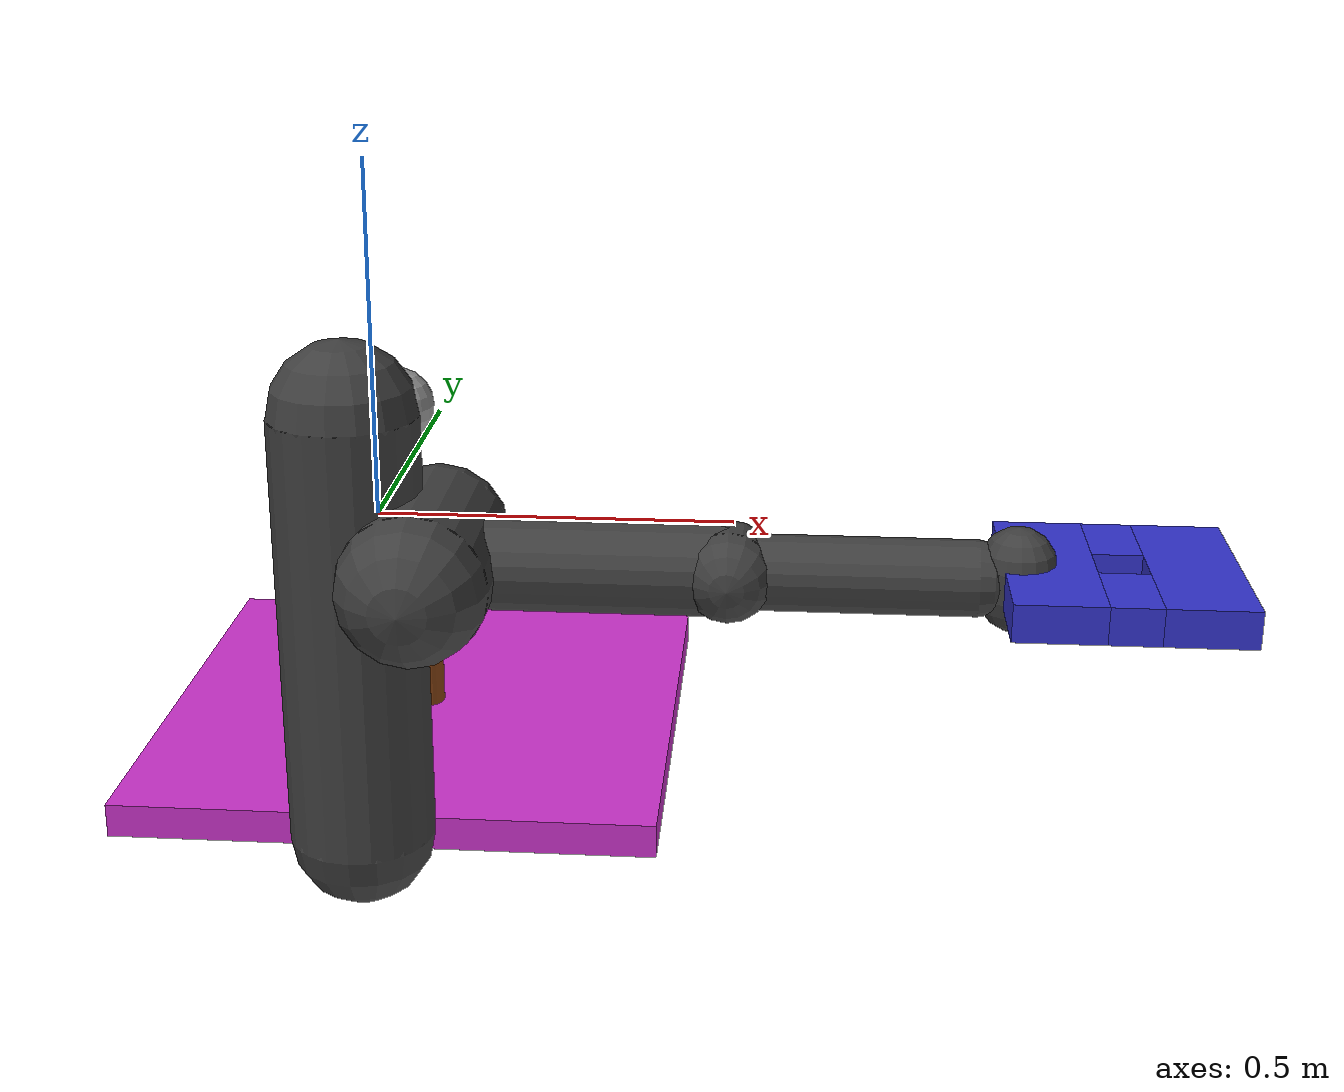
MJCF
<mujoco model="arm3d">

    <compiler inertiafromgeom="true" angle="radian" coordinate="local" />
    <option timestep="0.01" gravity="0 0 0" iterations="20" integrator="Euler" />
    <default>
        <joint armature="0.04" damping="1" limited="true" />
        <geom friction=".5 .1 .1" margin="0.002" condim="1" contype="0" conaffinity="0" />
    </default>
    <visual>
        <headlight ambient="1 1 1" />
    </visual>
    <asset>
        <material name="non-reflect" specular="0" shininess="0"/>
    </asset>

    <asset>
        <texture type="skybox" builtin="checker" rgb1="1 1 1" rgb2="1 1 1"
                 width="256" height="256"/>
    </asset>

    <worldbody>
        <body name="r_shoulder_pan_link" pos="0 -0.188 0">
            <geom name="e1" type="sphere" rgba="0.6 0.6 0.6 1" pos="-0.06 0.05 0.2" size="0.05" />
            <geom name="e2" type="sphere" rgba="0.6 0.6 0.6 1" pos=" 0.06 0.05 0.2" size="0.05" />
            <geom name="e1p" type="sphere" rgba="0.1 0.1 0.1 1" pos="-0.06 0.09 0.2" size="0.03" />
            <geom name="e2p" type="sphere" rgba="0.1 0.1 0.1 1" pos=" 0.06 0.09 0.2" size="0.03" />
            <geom name="sp" type="capsule" fromto="0 0 -0.4 0 0 0.2" size="0.1" contype="1" conaffinity="1" rgba="0.25 0.25 0.25 1"/>
            <joint name="r_shoulder_pan_joint" type="hinge" pos="0 0 0" axis="0 0 1" range="-2.2854 1.714602" damping="10.0" />

            <body name="r_shoulder_lift_link" pos="0.1 0 0">
                <geom name="sl" type="capsule" fromto="0 -0.1 0 0 0.1 0" size="0.1" contype="1" conaffinity="1" rgba="0.25 0.25 0.25 1"/>
                <joint name="r_shoulder_lift_joint" type="hinge" pos="0 0 0" axis="0 1 0" range="-0.5236 1.3963" damping="10.0" />

                <body name="r_upper_arm_roll_link" pos="0 0 0">
                    <geom name="uar" type="capsule" fromto="-0.1 0 0 0.1 0 0" size="0.02" rgba="0.25 0.25 0.25 1"/>
                    <joint name="r_upper_arm_roll_joint" type="hinge" pos="0 0 0" axis="1 0 0" range="-3.9 0.8" damping="0.1" />

                    <body name="r_upper_arm_link" pos="0 0 0">
                        <geom name="ua" type="capsule" fromto="0 0 0 0.4 0 0" size="0.06" contype="1" conaffinity="1" rgba="0.25 0.25 0.25 1"/>

                        <body name="r_elbow_flex_link" pos="0.4 0 0">
                            <geom name="ef" type="capsule" fromto="0 -0.02 0 0.0 0.02 0" size="0.06" rgba="0.25 0.25 0.25 1"/>
                            <joint name="r_elbow_flex_joint" type="hinge" pos="0 0 0" axis="0 1 0" range="-2.3213 0" damping="1.0" />

                            <body name="r_forearm_roll_link" pos="0 0 0">
                                <geom name="fr" type="capsule" fromto="-0.1 0 0 0.1 0 0" size="0.02" rgba="0.25 0.25 0.25 1"/>
                                <joint name="r_forearm_roll_joint" type="hinge" pos="0 0 0" axis="1 0 0" range="-3.15 3.15" damping=".1" />

                                <body name="r_forearm_link" pos="0 0 0">
                                    <geom name="fa" type="capsule" fromto="0 0 0 0.321 0 0" size="0.05" contype="1" conaffinity="1" rgba="0.25 0.25 0.25 1"/>

                                    <body name="r_wrist_flex_link" pos="0.321 0 0">
                                        <geom name="wf" type="capsule" fromto="0 -0.02 0 0 0.02 0" size="0.01" rgba="0.25 0.25 0.25 1"/>
                                        <joint name="r_wrist_flex_joint" type="hinge" pos="0 0 0" axis="0 1 0" range="-2.094 0" damping=".1" />

                                        <body name="r_wrist_roll_link" pos="0 0 0">
                                            <geom name="wr" type="capsule" fromto="-0.02 0 0 0.02 0 0" size="0.01" rgba="0.25 0.25 0.25 1"/>
                                            <joint name="r_wrist_roll_joint" type="hinge" pos="0 0 0" axis="1 0 0" range="-3.15 3.15" damping="0.1" />

                                            <body name="r_gripper_palm_link" pos="0 0 0">
                                                <geom name="pl" type="capsule" fromto="0.05 0 -0.02 0.05 0 0.02" size="0.05" rgba="0.25 0.25 0.25 1"/>

                                                <body name="r_gripper_tool_frame" pos="0.18 0 0">
                                                    <site name="disc_center" pos="0 0 0" size="0.01" />

                                                    <!--correspond to the disk-->

                                                    <body name="tool" pos="0 0 0">
                                                        <geom name="wc1" pos="0.0915 0 0" rgba="0.2 0.2 0.8 1" type="box" size="0.0585 0.15 0.025" contype="1" conaffinity="1" />
                                                        <geom name="wc2" pos="-0.0915 0 0" rgba="0.2 0.2 0.8 1" type="box" size="0.0585 0.15 0.025" contype="1" conaffinity="1" />
                                                        <geom name="wc3" pos="0.0 0.0915 0" rgba="0.2 0.2 0.8 1" type="box" size="0.033 0.0585 0.025" contype="1" conaffinity="1" />
                                                        <geom name="wc4" pos="0.0 -0.0915 0" rgba="0.2 0.2 0.8 1" type="box" size="0.033 0.0585 0.025" contype="1" conaffinity="1" />
                                                    </body>
                                                </body>
                                            </body>
                                        </body>
                                    </body>
                                </body>
                            </body>
                        </body>
                    </body>
                </body>
            </body>
        </body>

        <body name="w2" pos="0 0.3 -0.45">
            <!--bottom of peg (small dot)-->
            <site name="peg_bottom" pos="0 0 0.05" size="0.01" />

            <!-- table -->
            <geom name="w2" rgba="0.8 0.2 0.8 1" type="box" size="0.4 0.4 0.025" contype="1" conaffinity="1" />

            <!--old-->

            <!--puts joints on peg-->
            <body name="peg" pos="0.0 0.0 0.0">
                <!--huge density to prevent arm from moving peg-->
                <geom name="peg_geom" rgba="0.545098 0.270588 0.07450987 1" type="cylinder" fromto="0 0 0 0 0 0.3" size="0.028" density="2000000000" contype="1" conaffinity="1" />

            </body>
        </body>

    </worldbody>

    <actuator>
        <motor joint="r_shoulder_pan_joint" ctrlrange="-1.0 1.0" ctrllimited="true" />
        <motor joint="r_shoulder_lift_joint" ctrlrange="-1.0 1.0" ctrllimited="true" />
        <motor joint="r_upper_arm_roll_joint" ctrlrange="-1.0 1.0" ctrllimited="true" />
        <motor joint="r_elbow_flex_joint" ctrlrange="-1.0 1.0" ctrllimited="true" />
        <motor joint="r_forearm_roll_joint" ctrlrange="-1.0 1.0" ctrllimited="true" />
        <motor joint="r_wrist_flex_joint" ctrlrange="-1.0 1.0" ctrllimited="true" />
        <motor joint="r_wrist_roll_joint" ctrlrange="-1.0 1.0" ctrllimited="true" />
    </actuator>

</mujoco>
